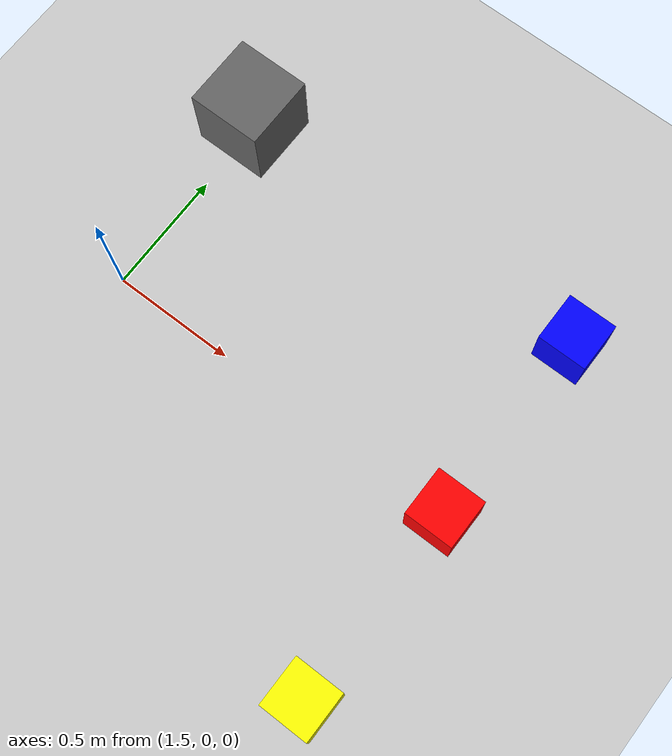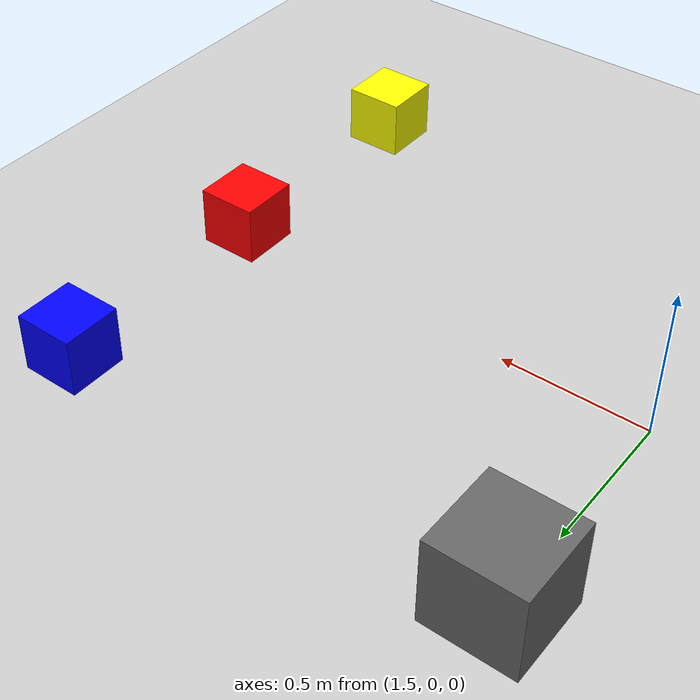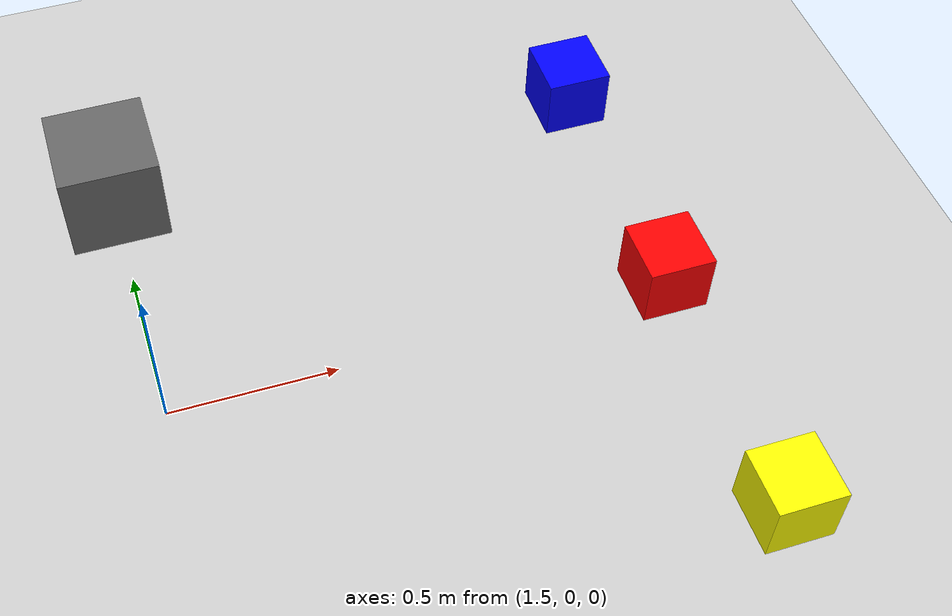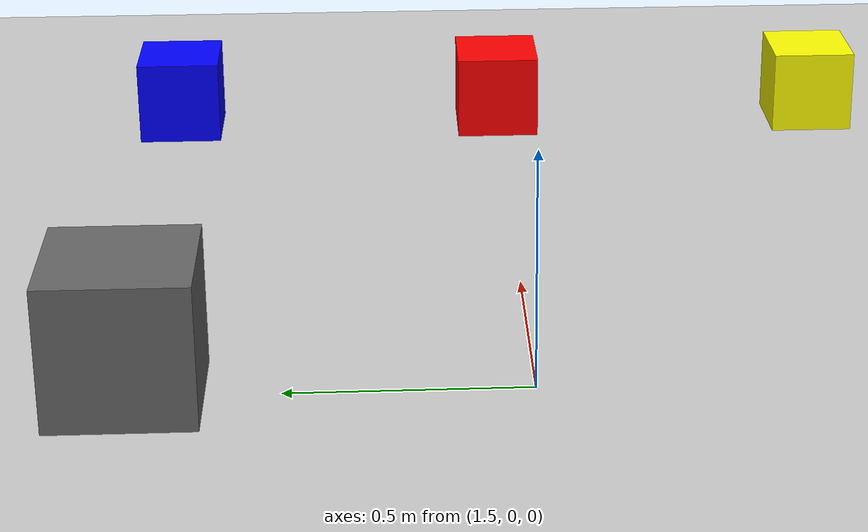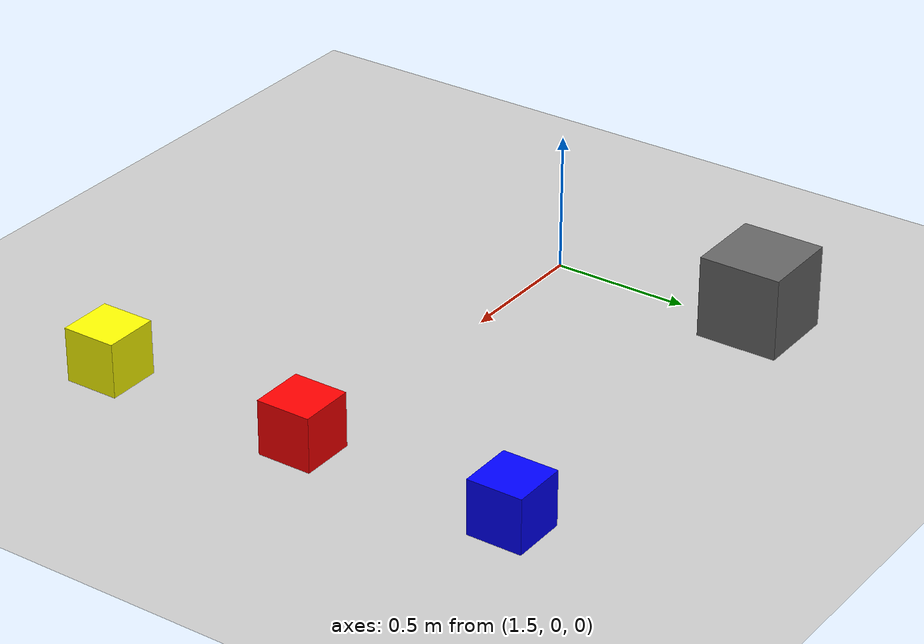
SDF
<sdf version="1.6"><world name="color_targets"><include><uri>model://sun</uri></include><include><uri>model://ground_plane</uri></include><physics name="default_physics" type="ode" /><model name="red_box">
    <static>true</static>
    <pose>3 0 0.1 0 0 0</pose>
    <link name="link">
      <collision name="collision">
        <geometry>
          <box><size>0.2 0.2 0.2</size></box>
        </geometry>
      </collision>
      <visual name="visual">
        <geometry>
          <box><size>0.2 0.2 0.2</size></box>
        </geometry>
        <material>
          <ambient>1 0 0 1</ambient>
          <diffuse>1 0 0 1</diffuse>
        </material>
      </visual>
    </link>
  </model>
<model name="blue_box">
    <static>true</static>
    <pose>3 0.8 0.1 0 0 0</pose>
    <link name="link">
      <collision name="collision">
        <geometry>
          <box><size>0.2 0.2 0.2</size></box>
        </geometry>
      </collision>
      <visual name="visual">
        <geometry>
          <box><size>0.2 0.2 0.2</size></box>
        </geometry>
        <material>
          <ambient>0 0 1 1</ambient>
          <diffuse>0 0 1 1</diffuse>
        </material>
      </visual>
    </link>
  </model>
<model name="yellow_box">
    <static>true</static>
    <pose>3 -0.8 0.1 0 0 0</pose>
    <link name="link">
      <collision name="collision">
        <geometry>
          <box><size>0.2 0.2 0.2</size></box>
        </geometry>
      </collision>
      <visual name="visual">
        <geometry>
          <box><size>0.2 0.2 0.2</size></box>
        </geometry>
        <material>
          <ambient>1 1 0 1</ambient>
          <diffuse>1 1 0 1</diffuse>
        </material>
      </visual>
    </link>
  </model>
<model name="gray_obstacle"><static>true</static>
  <pose>1.5 0.8 0.15 0 0 0</pose><link name="link">
  <collision name="collision"><geometry><box><size>0.3 0.3 0.3</size></box></geometry></collision>
  <visual name="visual"><geometry><box><size>0.3 0.3 0.3</size></box></geometry>
  <material><ambient>0.4 0.4 0.4 1</ambient></material></visual></link></model></world></sdf>
